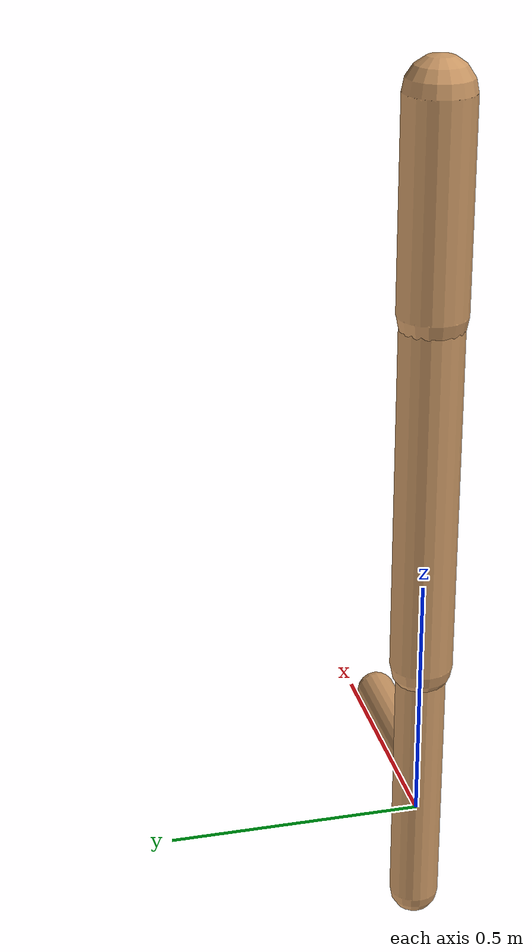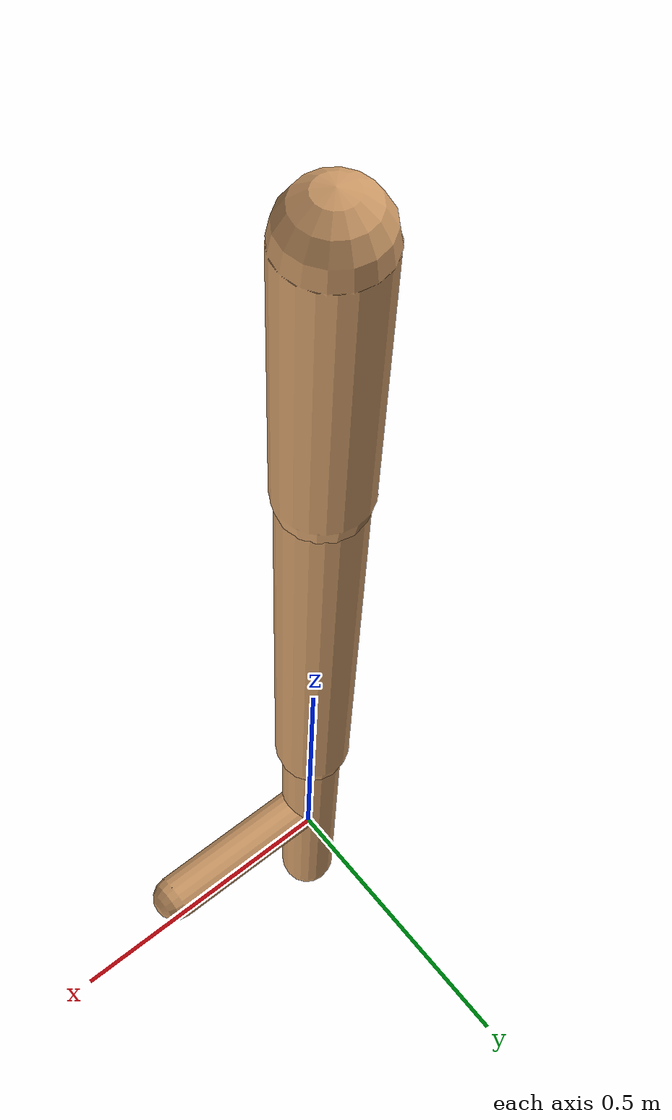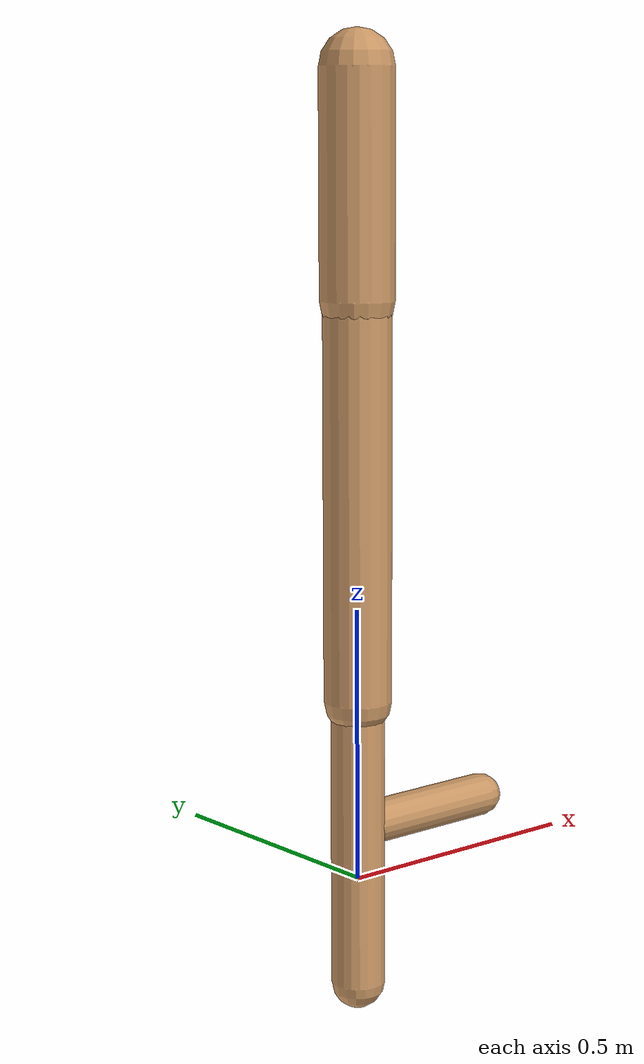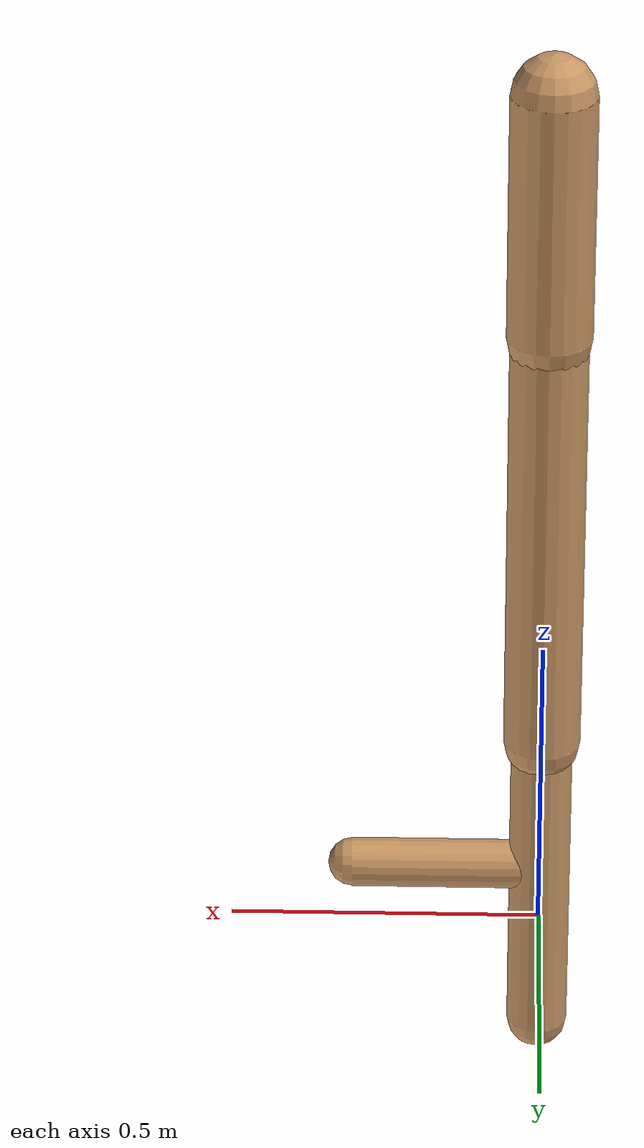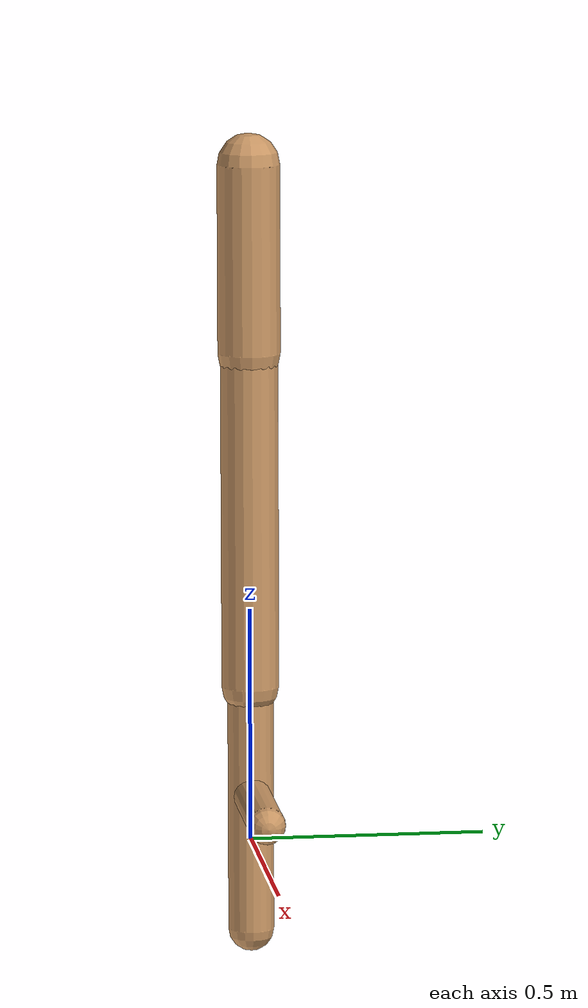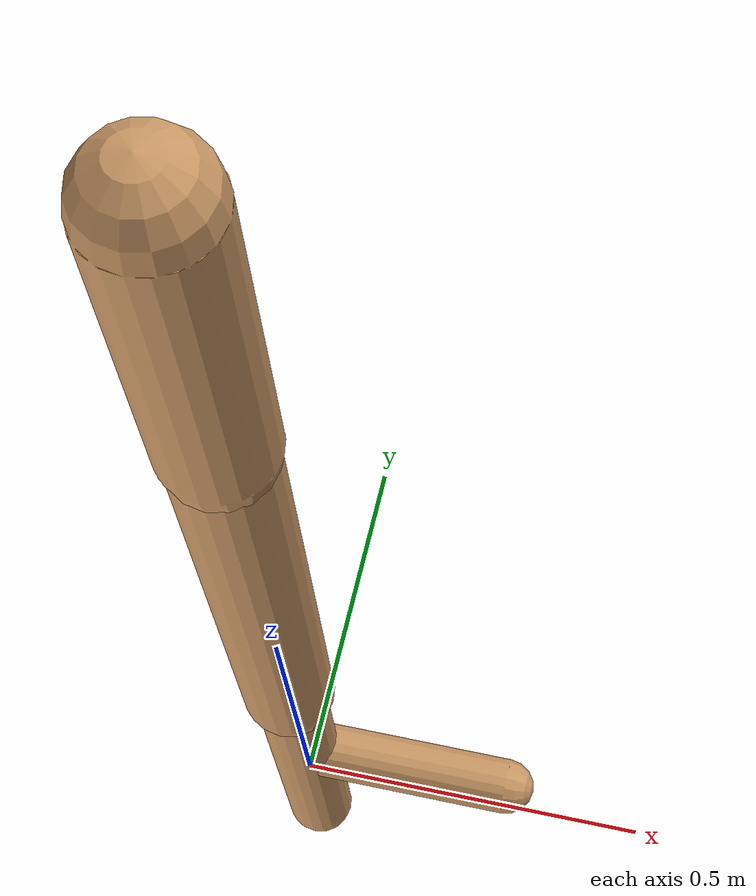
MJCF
<mujoco model="walker2d">
  <compiler angle="degree" coordinate="global" inertiafromgeom="true" />
  <default>
    <joint armature="0.01" damping=".1" limited="true" />
    <geom conaffinity="0" condim="3" contype="1" density="1000" friction="0.8 .1 .1" rgba="0.8 0.6 .4 1" />
  </default>
  <option integrator="RK4" timestep="0.002" />
  <worldbody>

    <body name="torso" pos="0 0 0.5628944272493868">
      <joint armature="0" axis="1 0 0" damping="0" limited="false" name="ignorex" pos="0 0 0" stiffness="0" type="slide" />
      <joint armature="0" axis="0 0 1" damping="0" limited="false" name="ignorez" pos="0 0 0" ref="1.25" stiffness="0" type="slide" />
      <joint armature="0" axis="0 1 0" damping="0" limited="false" name="ignorey" pos="0 0 0" stiffness="0" type="hinge" />
      <geom fromto="0 0 1.45 0 0 1.05" name="torso_geom" size="0.06663362993559128" type="capsule" />
      <body name="thigh">
        <joint axis="0 -1 0" name="thigh_joint" pos="0 0 1.05" range="-150 0" type="hinge" />
        <geom fromto="0.0 0.0 1.05 0.0 0.0 0.3333657976187115" name="thigh_geom" size="0.061245634647648844" type="capsule" />
        <body name="leg" pos="0.0 0.0 -0.2666342023812885">
          <joint axis="0 -1 0" name="leg_joint" pos="0 0 0.6" range="-150 0" type="hinge" />
          <geom fromto="0.0 0.0 0.6 0.0 0.0 -0.19626022486809827" name="leg_geom" size="0.04899650771811907" type="capsule" />
          <body name="foot" pos="0.0 0.0 -0.2962602248680983">
            <joint axis="0 -1 0" name="foot_joint" pos="0 0 0.1" range="-45 45" type="hinge" />
            <geom fromto="-0.0 0.0 0.1 0.3022089083209663 0.0 0.1" name="foot_geom" size="0.039572793037320954" type="capsule" />
          </body>
        </body>
      </body>

      <body name="thigh_left">
        <joint axis="0 -1 0" name="thigh_left_joint" pos="0 0 1.05" range="-150 0" type="hinge" />
        <geom fromto="0.0 0.0 1.05 0.0 0.0 0.3333657976187115" name="thigh_left_geom" rgba=".7 .3 .6 1" size="0.061245634647648844" type="capsule" />
        <body name="leg_left" pos="0.0 0.0 -0.2666342023812885">
          <joint axis="0 -1 0" name="leg_left_joint" pos="0 0 0.6" range="-150 0" type="hinge" />
          <geom fromto="0.0 0.0 0.6 0.0 0.0 -0.19626022486809827" name="leg_left_geom" rgba=".7 .3 .6 1" size="0.04899650771811907" type="capsule" />
          <body name="foot_left" pos="0.0 0.0 -0.2962602248680983">
            <joint axis="0 -1 0" name="foot_left_joint" pos="0 0 0.1" range="-45 45" type="hinge" />
            <geom fromto="-0.0 0.0 0.1 0.3022089083209663 0.0 0.1" name="foot_left_geom" rgba=".7 .3 .6 1" size="0.039572793037320954" type="capsule" />
          </body>
        </body>
      </body>
    </body>
  </worldbody>
  <actuator>

    <motor ctrllimited="true" ctrlrange="-1.0 1.0" gear="100" joint="thigh_joint" />
    <motor ctrllimited="true" ctrlrange="-1.0 1.0" gear="100" joint="leg_joint" />
    <motor ctrllimited="true" ctrlrange="-1.0 1.0" gear="100" joint="foot_joint" />
    <motor ctrllimited="true" ctrlrange="-1.0 1.0" gear="100" joint="thigh_left_joint" />
    <motor ctrllimited="true" ctrlrange="-1.0 1.0" gear="100" joint="leg_left_joint" />
    <motor ctrllimited="true" ctrlrange="-1.0 1.0" gear="100" joint="foot_left_joint" />

  </actuator>
</mujoco>
